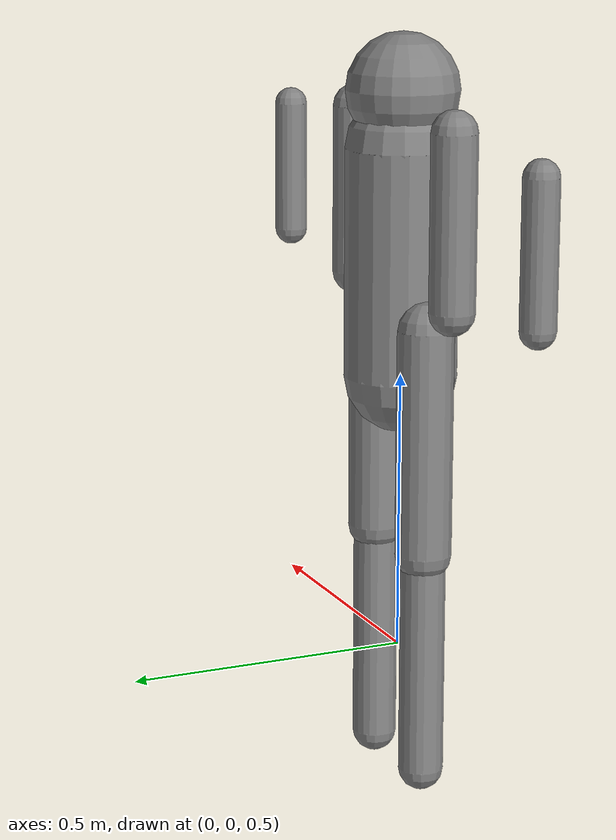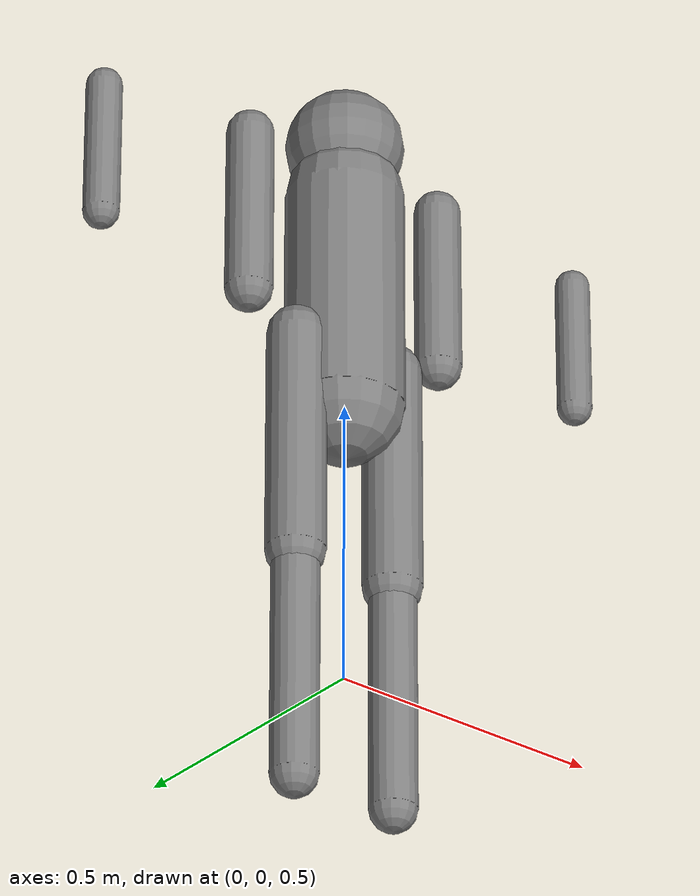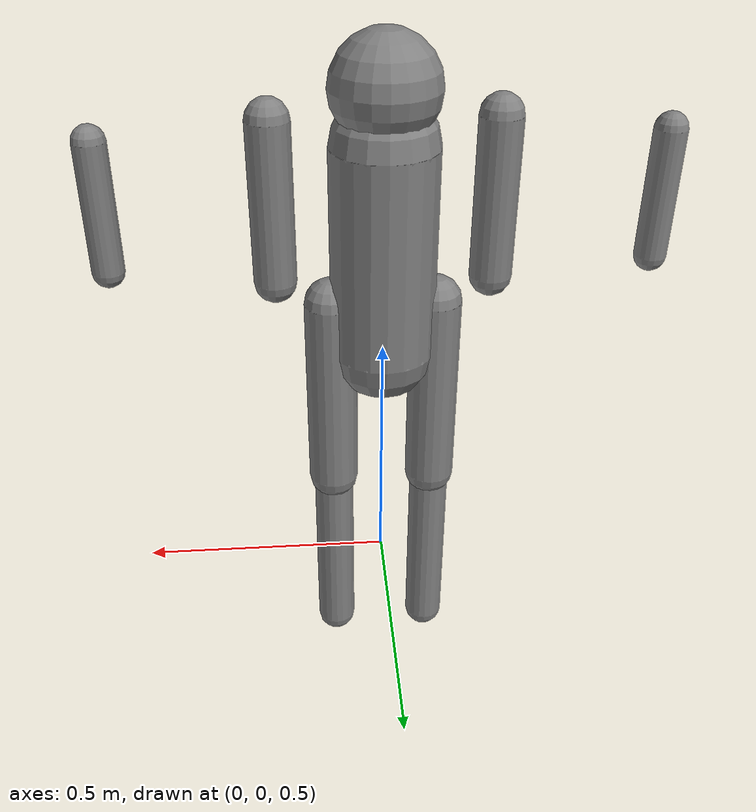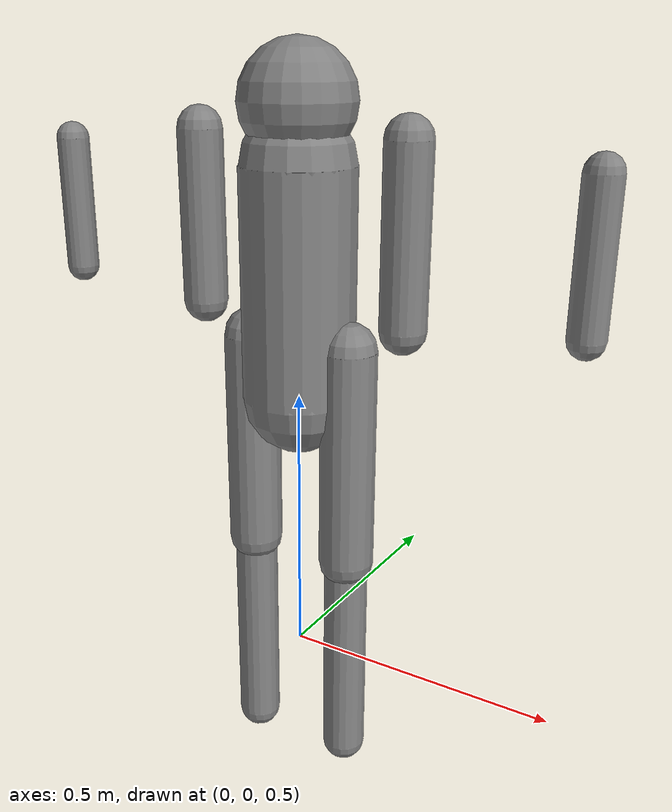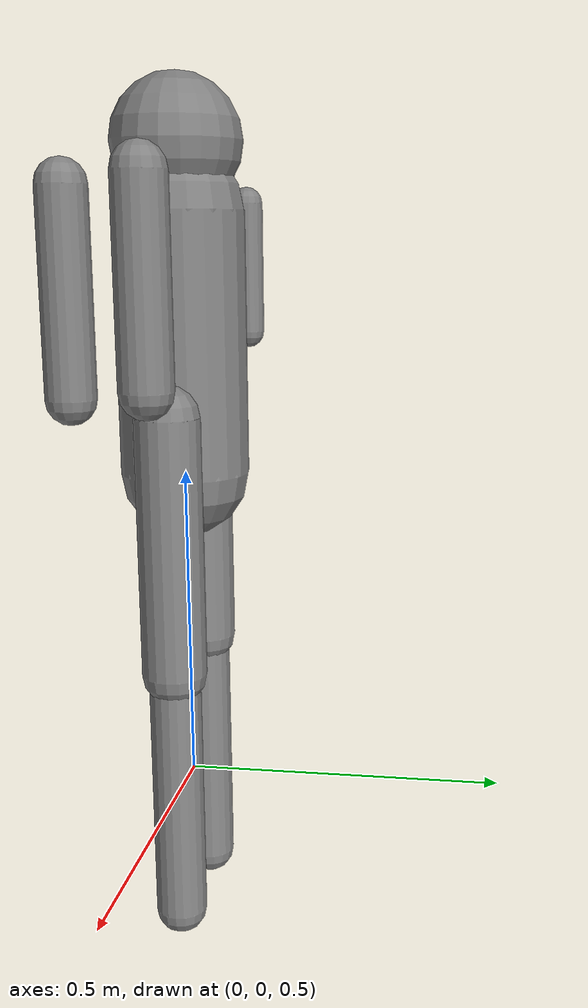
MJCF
<mujoco model="humanoid_simplified">
            <option gravity="0 0 -9.81" timestep="0.002"/>
            <worldbody>
                <body name="torso" pos="0 0 1.2">
                    <joint type="free"/>
                    <geom type="capsule" size="0.1 0.2" mass="10"/>

                    <body name="head" pos="0 0 0.3">
                        <joint type="ball"/>
                        <geom type="sphere" size="0.1" mass="2"/>
                    </body>

                    <body name="upper_arm_r" pos="0.2 0 0.1">
                        <joint type="ball"/>
                        <geom type="capsule" size="0.04 0.15" mass="1.5"/>
                        <body name="lower_arm_r" pos="0.3 0 0">
                            <joint type="hinge" axis="0 1 0"/>
                            <geom type="capsule" size="0.03 0.12" mass="1"/>
                        </body>
                    </body>

                    <body name="upper_arm_l" pos="-0.2 0 0.1">
                        <joint type="ball"/>
                        <geom type="capsule" size="0.04 0.15" mass="1.5"/>
                        <body name="lower_arm_l" pos="-0.3 0 0">
                            <joint type="hinge" axis="0 1 0"/>
                            <geom type="capsule" size="0.03 0.12" mass="1"/>
                        </body>
                    </body>

                    <body name="upper_leg_r" pos="0.1 0 -0.3">
                        <joint type="ball"/>
                        <geom type="capsule" size="0.05 0.2" mass="3"/>
                        <body name="lower_leg_r" pos="0 0 -0.4">
                            <joint type="hinge" axis="0 1 0"/>
                            <geom type="capsule" size="0.04 0.2" mass="2"/>
                        </body>
                    </body>

                    <body name="upper_leg_l" pos="-0.1 0 -0.3">
                        <joint type="ball"/>
                        <geom type="capsule" size="0.05 0.2" mass="3"/>
                        <body name="lower_leg_l" pos="0 0 -0.4">
                            <joint type="hinge" axis="0 1 0"/>
                            <geom type="capsule" size="0.04 0.2" mass="2"/>
                        </body>
                    </body>
                </body>
            </worldbody>
        </mujoco>
